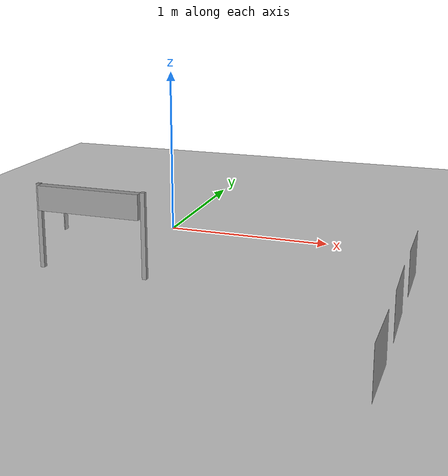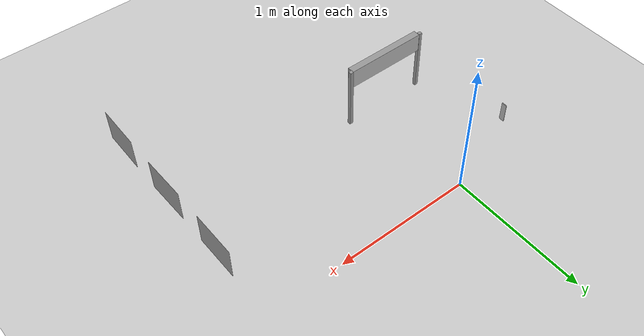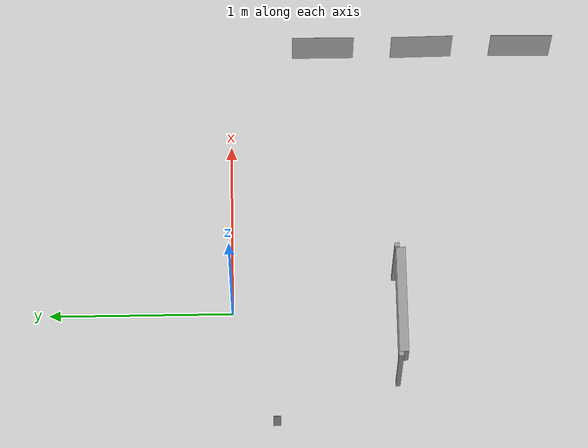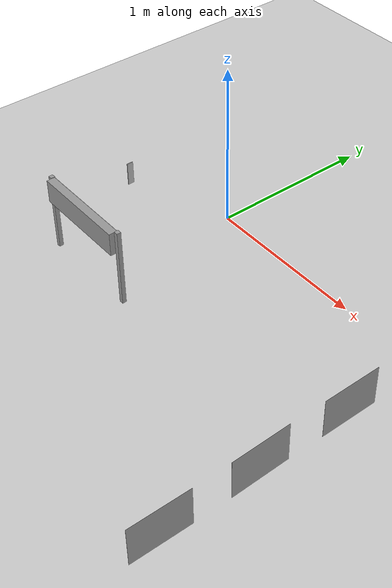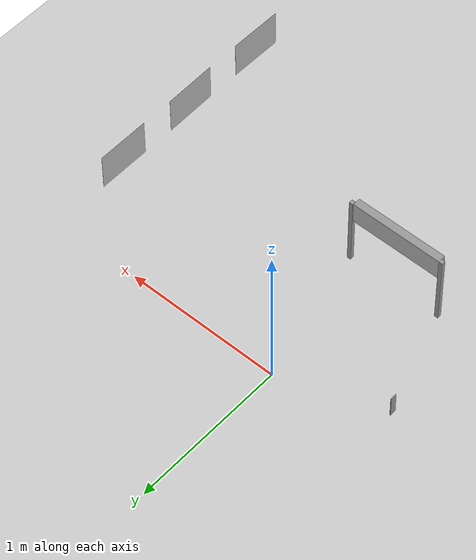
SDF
<sdf version="1.7">
 <world name="default">
  <model name="ground_plane">
   <static>1</static>
   <link name="link">
    <collision name="collision">
     <geometry><plane><normal>0 0 1</normal><size>100 100</size></plane></geometry>
     <surface>
      <contact><collide_bitmask>65535</collide_bitmask></contact>
      <friction><ode><mu>100</mu><mu2>50</mu2></ode></friction>
     </surface>
    </collision>
    <visual name="visual">
     <cast_shadows>0</cast_shadows>
     <geometry><plane><normal>0 0 1</normal><size>4.2 4.2</size></plane></geometry>
     <material><script><uri>file:///home/ros1/桌面/2/png1.material</uri><name>png1</name></script></material>
    </visual>
   </link>
  </model>
  <model name="car1">
   <link name="link_0">
    <inertial>
     <mass>1</mass>
     <inertia>
      <ixx>0.166667</ixx>
      <ixy>0</ixy>
      <ixz>0</ixz>
      <iyy>0.166667</iyy>
      <iyz>0</iyz>
      <izz>0.166667</izz>
     </inertia>
    </inertial>
    <pose>0 -0.000125 -0 0 -0 0</pose>
    <visual name="visual">
     <geometry><box><size>0.345 0.0004 0.25</size></box></geometry>
     <material>
      <lighting>1</lighting>
      <script><uri>file://media/materials/scripts/gazebo.material</uri><name>Gazebo/Grey</name></script>
      <shader type="pixel"><normal_map>__default__</normal_map></shader>
      <ambient>0.3 0.3 0.3 1</ambient>
      <diffuse>0.7 0.7 0.7 1</diffuse>
      <specular>0.01 0.01 0.01 1</specular>
      <emissive>0 0 0 1</emissive>
     </material>
    </visual>
    <collision name="collision">
     <geometry><box><size>0.345 0.0004 0.25</size></box></geometry>
     <surface>
      <friction>
       <ode><mu>1</mu><mu2>1</mu2><fdir1>0 0 0</fdir1><slip1>0</slip1><slip2>0</slip2></ode>
       <torsional>
        <coefficient>1</coefficient>
        <patch_radius>0</patch_radius>
        <surface_radius>0</surface_radius>
        <use_patch_radius>1</use_patch_radius>
        <ode><slip>0</slip></ode>
       </torsional>
      </friction>
      <bounce><restitution_coefficient>0</restitution_coefficient><threshold>1e+06</threshold></bounce>
      <contact>
       <collide_without_contact>0</collide_without_contact>
       <collide_without_contact_bitmask>1</collide_without_contact_bitmask>
       <collide_bitmask>1</collide_bitmask>
       <ode>
        <soft_cfm>0</soft_cfm>
        <soft_erp>0.2</soft_erp>
        <kp>1e+13</kp>
        <kd>1</kd>
        <max_vel>0.01</max_vel>
        <min_depth>0</min_depth>
       </ode>
       <bullet>
        <split_impulse>1</split_impulse>
        <split_impulse_penetration_threshold>-0.01</split_impulse_penetration_threshold>
        <soft_cfm>0</soft_cfm>
        <soft_erp>0.2</soft_erp>
        <kp>1e+13</kp>
        <kd>1</kd>
       </bullet>
      </contact>
     </surface>
    </collision>
   </link>
   <link name="link_1">
    <inertial>
     <mass>1</mass>
     <inertia>
      <ixx>0.166667</ixx>
      <ixy>0</ixy>
      <ixz>0</ixz>
      <iyy>0.166667</iyy>
      <iyz>0</iyz>
      <izz>0.166667</izz>
     </inertia>
    </inertial>
    <pose>0 0.000125 -0 0 -0 0</pose>
    <visual name="visual">
     <geometry><box><size>0.345 0.0001 0.25</size></box></geometry>
     <material>
      <lighting>1</lighting>
      <script><uri>file:///home/ros1/model_editor_models/car1/car1.material</uri><name>car1</name></script>
     </material>
    </visual>
    <collision name="collision">
     <geometry><box><size>0.345 0.0001 0.25</size></box></geometry>
     <surface>
      <friction>
       <ode><mu>1</mu><mu2>1</mu2><fdir1>0 0 0</fdir1><slip1>0</slip1><slip2>0</slip2></ode>
       <torsional>
        <coefficient>1</coefficient>
        <patch_radius>0</patch_radius>
        <surface_radius>0</surface_radius>
        <use_patch_radius>1</use_patch_radius>
        <ode><slip>0</slip></ode>
       </torsional>
      </friction>
      <bounce><restitution_coefficient>0</restitution_coefficient><threshold>1e+06</threshold></bounce>
      <contact>
       <collide_without_contact>0</collide_without_contact>
       <collide_without_contact_bitmask>1</collide_without_contact_bitmask>
       <collide_bitmask>1</collide_bitmask>
       <ode>
        <soft_cfm>0</soft_cfm>
        <soft_erp>0.2</soft_erp>
        <kp>1e+13</kp>
        <kd>1</kd>
        <max_vel>0.01</max_vel>
        <min_depth>0</min_depth>
       </ode>
       <bullet>
        <split_impulse>1</split_impulse>
        <split_impulse_penetration_threshold>-0.01</split_impulse_penetration_threshold>
        <soft_cfm>0</soft_cfm>
        <soft_erp>0.2</soft_erp>
        <kp>1e+13</kp>
        <kd>1</kd>
       </bullet>
      </contact>
     </surface>
    </collision>
   </link>
   <static>0</static>
   <pose>1.56151 -1.63759 0.125 1e-06 -0 1.55632</pose>
  </model>
  <model name="car1_0">
   <link name="link_0">
    <inertial>
     <mass>1</mass>
     <inertia>
      <ixx>0.166667</ixx>
      <ixy>0</ixy>
      <ixz>0</ixz>
      <iyy>0.166667</iyy>
      <iyz>0</iyz>
      <izz>0.166667</izz>
     </inertia>
    </inertial>
    <pose>0 -0.000125 -0 0 -0 0</pose>
    <visual name="visual">
     <geometry><box><size>0.345 0.0004 0.25</size></box></geometry>
     <material>
      <lighting>1</lighting>
      <script><uri>file://media/materials/scripts/gazebo.material</uri><name>Gazebo/Grey</name></script>
      <shader type="pixel"><normal_map>__default__</normal_map></shader>
      <ambient>0.3 0.3 0.3 1</ambient>
      <diffuse>0.7 0.7 0.7 1</diffuse>
      <specular>0.01 0.01 0.01 1</specular>
      <emissive>0 0 0 1</emissive>
     </material>
    </visual>
    <collision name="collision">
     <geometry><box><size>0.345 0.0004 0.25</size></box></geometry>
     <surface>
      <friction>
       <ode><mu>1</mu><mu2>1</mu2><fdir1>0 0 0</fdir1><slip1>0</slip1><slip2>0</slip2></ode>
       <torsional>
        <coefficient>1</coefficient>
        <patch_radius>0</patch_radius>
        <surface_radius>0</surface_radius>
        <use_patch_radius>1</use_patch_radius>
        <ode><slip>0</slip></ode>
       </torsional>
      </friction>
      <bounce><restitution_coefficient>0</restitution_coefficient><threshold>1e+06</threshold></bounce>
      <contact>
       <collide_without_contact>0</collide_without_contact>
       <collide_without_contact_bitmask>1</collide_without_contact_bitmask>
       <collide_bitmask>1</collide_bitmask>
       <ode>
        <soft_cfm>0</soft_cfm>
        <soft_erp>0.2</soft_erp>
        <kp>1e+13</kp>
        <kd>1</kd>
        <max_vel>0.01</max_vel>
        <min_depth>0</min_depth>
       </ode>
       <bullet>
        <split_impulse>1</split_impulse>
        <split_impulse_penetration_threshold>-0.01</split_impulse_penetration_threshold>
        <soft_cfm>0</soft_cfm>
        <soft_erp>0.2</soft_erp>
        <kp>1e+13</kp>
        <kd>1</kd>
       </bullet>
      </contact>
     </surface>
    </collision>
   </link>
   <link name="link_1">
    <inertial>
     <mass>1</mass>
     <inertia>
      <ixx>0.166667</ixx>
      <ixy>0</ixy>
      <ixz>0</ixz>
      <iyy>0.166667</iyy>
      <iyz>0</iyz>
      <izz>0.166667</izz>
     </inertia>
    </inertial>
    <pose>0 0.000125 -0 0 -0 0</pose>
    <visual name="visual">
     <geometry><box><size>0.345 0.0001 0.25</size></box></geometry>
     <material>
      <lighting>1</lighting>
      <script><uri>file:///home/ros1/model_editor_models/car2/car2.material</uri><name>car2</name></script>
     </material>
    </visual>
    <collision name="collision">
     <geometry><box><size>0.345 0.0001 0.25</size></box></geometry>
     <surface>
      <friction>
       <ode><mu>1</mu><mu2>1</mu2><fdir1>0 0 0</fdir1><slip1>0</slip1><slip2>0</slip2></ode>
       <torsional>
        <coefficient>1</coefficient>
        <patch_radius>0</patch_radius>
        <surface_radius>0</surface_radius>
        <use_patch_radius>1</use_patch_radius>
        <ode><slip>0</slip></ode>
       </torsional>
      </friction>
      <bounce><restitution_coefficient>0</restitution_coefficient><threshold>1e+06</threshold></bounce>
      <contact>
       <collide_without_contact>0</collide_without_contact>
       <collide_without_contact_bitmask>1</collide_without_contact_bitmask>
       <collide_bitmask>1</collide_bitmask>
       <ode>
        <soft_cfm>0</soft_cfm>
        <soft_erp>0.2</soft_erp>
        <kp>1e+13</kp>
        <kd>1</kd>
        <max_vel>0.01</max_vel>
        <min_depth>0</min_depth>
       </ode>
       <bullet>
        <split_impulse>1</split_impulse>
        <split_impulse_penetration_threshold>-0.01</split_impulse_penetration_threshold>
        <soft_cfm>0</soft_cfm>
        <soft_erp>0.2</soft_erp>
        <kp>1e+13</kp>
        <kd>1</kd>
       </bullet>
      </contact>
     </surface>
    </collision>
   </link>
   <static>0</static>
   <pose>1.56242 -1.07814 0.125 0 -0 1.5863</pose>
  </model>
  <model name="car1_1">
   <link name="link_0">
    <inertial>
     <mass>1</mass>
     <inertia>
      <ixx>0.166667</ixx>
      <ixy>0</ixy>
      <ixz>0</ixz>
      <iyy>0.166667</iyy>
      <iyz>0</iyz>
      <izz>0.166667</izz>
     </inertia>
    </inertial>
    <pose>0 -0.000125 -0 0 -0 0</pose>
    <visual name="visual">
     <geometry><box><size>0.345 0.0004 0.25</size></box></geometry>
     <material>
      <lighting>1</lighting>
      <script><uri>file://media/materials/scripts/gazebo.material</uri><name>Gazebo/Grey</name></script>
      <shader type="pixel"><normal_map>__default__</normal_map></shader>
      <ambient>0.3 0.3 0.3 1</ambient>
      <diffuse>0.7 0.7 0.7 1</diffuse>
      <specular>0.01 0.01 0.01 1</specular>
      <emissive>0 0 0 1</emissive>
     </material>
    </visual>
    <collision name="collision">
     <geometry><box><size>0.345 0.0004 0.25</size></box></geometry>
     <surface>
      <friction>
       <ode><mu>1</mu><mu2>1</mu2><fdir1>0 0 0</fdir1><slip1>0</slip1><slip2>0</slip2></ode>
       <torsional>
        <coefficient>1</coefficient>
        <patch_radius>0</patch_radius>
        <surface_radius>0</surface_radius>
        <use_patch_radius>1</use_patch_radius>
        <ode><slip>0</slip></ode>
       </torsional>
      </friction>
      <bounce><restitution_coefficient>0</restitution_coefficient><threshold>1e+06</threshold></bounce>
      <contact>
       <collide_without_contact>0</collide_without_contact>
       <collide_without_contact_bitmask>1</collide_without_contact_bitmask>
       <collide_bitmask>1</collide_bitmask>
       <ode>
        <soft_cfm>0</soft_cfm>
        <soft_erp>0.2</soft_erp>
        <kp>1e+13</kp>
        <kd>1</kd>
        <max_vel>0.01</max_vel>
        <min_depth>0</min_depth>
       </ode>
       <bullet>
        <split_impulse>1</split_impulse>
        <split_impulse_penetration_threshold>-0.01</split_impulse_penetration_threshold>
        <soft_cfm>0</soft_cfm>
        <soft_erp>0.2</soft_erp>
        <kp>1e+13</kp>
        <kd>1</kd>
       </bullet>
      </contact>
     </surface>
    </collision>
   </link>
   <link name="link_1">
    <inertial>
     <mass>1</mass>
     <inertia>
      <ixx>0.166667</ixx>
      <ixy>0</ixy>
      <ixz>0</ixz>
      <iyy>0.166667</iyy>
      <iyz>0</iyz>
      <izz>0.166667</izz>
     </inertia>
    </inertial>
    <pose>0 0.000125 -0 0 -0 0</pose>
    <visual name="visual">
     <geometry><box><size>0.345 0.0001 0.25</size></box></geometry>
     <material>
      <lighting>1</lighting>
      <script><uri>file:///home/ros1/model_editor_models/car3/car3.material</uri><name>car3</name></script>
     </material>
    </visual>
    <collision name="collision">
     <geometry><box><size>0.345 0.0001 0.25</size></box></geometry>
     <surface>
      <friction>
       <ode><mu>1</mu><mu2>1</mu2><fdir1>0 0 0</fdir1><slip1>0</slip1><slip2>0</slip2></ode>
       <torsional>
        <coefficient>1</coefficient>
        <patch_radius>0</patch_radius>
        <surface_radius>0</surface_radius>
        <use_patch_radius>1</use_patch_radius>
        <ode><slip>0</slip></ode>
       </torsional>
      </friction>
      <bounce><restitution_coefficient>0</restitution_coefficient><threshold>1e+06</threshold></bounce>
      <contact>
       <collide_without_contact>0</collide_without_contact>
       <collide_without_contact_bitmask>1</collide_without_contact_bitmask>
       <collide_bitmask>1</collide_bitmask>
       <ode>
        <soft_cfm>0</soft_cfm>
        <soft_erp>0.2</soft_erp>
        <kp>1e+13</kp>
        <kd>1</kd>
        <max_vel>0.01</max_vel>
        <min_depth>0</min_depth>
       </ode>
       <bullet>
        <split_impulse>1</split_impulse>
        <split_impulse_penetration_threshold>-0.01</split_impulse_penetration_threshold>
        <soft_cfm>0</soft_cfm>
        <soft_erp>0.2</soft_erp>
        <kp>1e+13</kp>
        <kd>1</kd>
       </bullet>
      </contact>
     </surface>
    </collision>
   </link>
   <static>0</static>
   <pose>1.56249 -0.521605 0.124999 0 4e-06 1.5704</pose>
  </model>
  <model name="man-11">
   <link name="link_0">
    <inertial>
     <mass>1</mass>
     <inertia>
      <ixx>0.166667</ixx>
      <ixy>0</ixy>
      <ixz>0</ixz>
      <iyy>0.166667</iyy>
      <iyz>0</iyz>
      <izz>0.166667</izz>
     </inertia>
    </inertial>
    <pose>0 -0.0015 -0 0 -0 0</pose>
    <visual name="visual">
     <geometry><box><size>0.04 0.005 0.15</size></box></geometry>
     <material>
      <lighting>1</lighting>
      <script><uri>file://media/materials/scripts/gazebo.material</uri><name>Gazebo/Grey</name></script>
      <shader type="pixel"><normal_map>__default__</normal_map></shader>
      <ambient>0.3 0.3 0.3 1</ambient>
      <diffuse>0.7 0.7 0.7 1</diffuse>
      <specular>0.01 0.01 0.01 1</specular>
      <emissive>0 0 0 1</emissive>
     </material>
    </visual>
    <collision name="collision">
     <geometry><box><size>0.04 0.005 0.15</size></box></geometry>
     <surface>
      <friction>
       <ode><mu>1</mu><mu2>1</mu2><fdir1>0 0 0</fdir1><slip1>0</slip1><slip2>0</slip2></ode>
       <torsional>
        <coefficient>1</coefficient>
        <patch_radius>0</patch_radius>
        <surface_radius>0</surface_radius>
        <use_patch_radius>1</use_patch_radius>
        <ode><slip>0</slip></ode>
       </torsional>
      </friction>
      <bounce><restitution_coefficient>0</restitution_coefficient><threshold>1e+06</threshold></bounce>
      <contact>
       <collide_without_contact>0</collide_without_contact>
       <collide_without_contact_bitmask>1</collide_without_contact_bitmask>
       <collide_bitmask>1</collide_bitmask>
       <ode>
        <soft_cfm>0</soft_cfm>
        <soft_erp>0.2</soft_erp>
        <kp>1e+13</kp>
        <kd>1</kd>
        <max_vel>0.01</max_vel>
        <min_depth>0</min_depth>
       </ode>
       <bullet>
        <split_impulse>1</split_impulse>
        <split_impulse_penetration_threshold>-0.01</split_impulse_penetration_threshold>
        <soft_cfm>0</soft_cfm>
        <soft_erp>0.2</soft_erp>
        <kp>1e+13</kp>
        <kd>1</kd>
       </bullet>
      </contact>
     </surface>
    </collision>
   </link>
   <link name="link_4">
    <inertial>
     <mass>1</mass>
     <inertia>
      <ixx>0.166667</ixx>
      <ixy>0</ixy>
      <ixz>0</ixz>
      <iyy>0.166667</iyy>
      <iyz>0</iyz>
      <izz>0.166667</izz>
     </inertia>
    </inertial>
    <pose>0 0.0015 -0 0 -0 0</pose>
    <visual name="visual">
     <geometry><box><size>0.04 0.001 0.15</size></box></geometry>
     <material>
      <script><uri>file:///home/ros1/model_editor_models/man-11/man_11.material</uri><name>man_11</name></script>
     </material>
    </visual>
    <collision name="collision">
     <geometry><box><size>0.04 0.001 0.15</size></box></geometry>
     <surface>
      <friction>
       <ode><mu>1</mu><mu2>1</mu2><fdir1>0 0 0</fdir1><slip1>0</slip1><slip2>0</slip2></ode>
       <torsional>
        <coefficient>1</coefficient>
        <patch_radius>0</patch_radius>
        <surface_radius>0</surface_radius>
        <use_patch_radius>1</use_patch_radius>
        <ode><slip>0</slip></ode>
       </torsional>
      </friction>
      <bounce><restitution_coefficient>0</restitution_coefficient><threshold>1e+06</threshold></bounce>
      <contact>
       <collide_without_contact>0</collide_without_contact>
       <collide_without_contact_bitmask>1</collide_without_contact_bitmask>
       <collide_bitmask>1</collide_bitmask>
       <ode>
        <soft_cfm>0</soft_cfm>
        <soft_erp>0.2</soft_erp>
        <kp>1e+13</kp>
        <kd>1</kd>
        <max_vel>0.01</max_vel>
        <min_depth>0</min_depth>
       </ode>
       <bullet>
        <split_impulse>1</split_impulse>
        <split_impulse_penetration_threshold>-0.01</split_impulse_penetration_threshold>
        <soft_cfm>0</soft_cfm>
        <soft_erp>0.2</soft_erp>
        <kp>1e+13</kp>
        <kd>1</kd>
       </bullet>
      </contact>
     </surface>
    </collision>
   </link>
   <static>0</static>
   <pose>-0.638543 -0.236859 0.075001 -2e-06 4.8e-05 -1.575</pose>
  </model>
  <model name="leg_1">
   <link name="link_0">
    <inertial>
     <mass>1</mass>
     <inertia>
      <ixx>0.166667</ixx>
      <ixy>0</ixy>
      <ixz>0</ixz>
      <iyy>0.166667</iyy>
      <iyz>0</iyz>
      <izz>0.166667</izz>
     </inertia>
    </inertial>
    <visual name="visual">
     <geometry><box><size>0.025 0.025 0.48</size></box></geometry>
     <material>
      <lighting>1</lighting>
      <script><uri>file://media/materials/scripts/gazebo.material</uri><name>Gazebo/Grey</name></script>
      <shader type="pixel"><normal_map>__default__</normal_map></shader>
      <ambient>0.3 0.3 0.3 1</ambient>
      <diffuse>0.7 0.7 0.7 1</diffuse>
      <specular>0.01 0.01 0.01 1</specular>
      <emissive>0 0 0 1</emissive>
     </material>
    </visual>
    <collision name="collision">
     <geometry><box><size>0.025 0.025 0.48</size></box></geometry>
     <surface>
      <friction>
       <ode><mu>1</mu><mu2>1</mu2><fdir1>0 0 0</fdir1><slip1>0</slip1><slip2>0</slip2></ode>
       <torsional>
        <coefficient>1</coefficient>
        <patch_radius>0</patch_radius>
        <surface_radius>0</surface_radius>
        <use_patch_radius>1</use_patch_radius>
        <ode><slip>0</slip></ode>
       </torsional>
      </friction>
      <bounce><restitution_coefficient>0</restitution_coefficient><threshold>1e+06</threshold></bounce>
      <contact>
       <collide_without_contact>0</collide_without_contact>
       <collide_without_contact_bitmask>1</collide_without_contact_bitmask>
       <collide_bitmask>1</collide_bitmask>
       <ode>
        <soft_cfm>0</soft_cfm>
        <soft_erp>0.2</soft_erp>
        <kp>1e+13</kp>
        <kd>1</kd>
        <max_vel>0.01</max_vel>
        <min_depth>0</min_depth>
       </ode>
       <bullet>
        <split_impulse>1</split_impulse>
        <split_impulse_penetration_threshold>-0.01</split_impulse_penetration_threshold>
        <soft_cfm>0</soft_cfm>
        <soft_erp>0.2</soft_erp>
        <kp>1e+13</kp>
        <kd>1</kd>
       </bullet>
      </contact>
     </surface>
    </collision>
   </link>
   <static>0</static>
   <pose>-0.415354 -0.888387 0.24 4e-06 2.1e-05 2.6e-05</pose>
  </model>
  <model name="leg_2">
   <link name="link_0">
    <inertial>
     <mass>1</mass>
     <inertia>
      <ixx>0.166667</ixx>
      <ixy>0</ixy>
      <ixz>0</ixz>
      <iyy>0.166667</iyy>
      <iyz>0</iyz>
      <izz>0.166667</izz>
     </inertia>
    </inertial>
    <visual name="visual">
     <geometry><box><size>0.025 0.025 0.48</size></box></geometry>
     <material>
      <lighting>1</lighting>
      <script><uri>file://media/materials/scripts/gazebo.material</uri><name>Gazebo/Grey</name></script>
      <shader type="pixel"><normal_map>__default__</normal_map></shader>
      <ambient>0.3 0.3 0.3 1</ambient>
      <diffuse>0.7 0.7 0.7 1</diffuse>
      <specular>0.01 0.01 0.01 1</specular>
      <emissive>0 0 0 1</emissive>
     </material>
    </visual>
    <collision name="collision">
     <geometry><box><size>0.025 0.025 0.48</size></box></geometry>
     <surface>
      <friction>
       <ode><mu>1</mu><mu2>1</mu2><fdir1>0 0 0</fdir1><slip1>0</slip1><slip2>0</slip2></ode>
       <torsional>
        <coefficient>1</coefficient>
        <patch_radius>0</patch_radius>
        <surface_radius>0</surface_radius>
        <use_patch_radius>1</use_patch_radius>
        <ode><slip>0</slip></ode>
       </torsional>
      </friction>
      <bounce><restitution_coefficient>0</restitution_coefficient><threshold>1e+06</threshold></bounce>
      <contact>
       <collide_without_contact>0</collide_without_contact>
       <collide_without_contact_bitmask>1</collide_without_contact_bitmask>
       <collide_bitmask>1</collide_bitmask>
       <ode>
        <soft_cfm>0</soft_cfm>
        <soft_erp>0.2</soft_erp>
        <kp>1e+13</kp>
        <kd>1</kd>
        <max_vel>0.01</max_vel>
        <min_depth>0</min_depth>
       </ode>
       <bullet>
        <split_impulse>1</split_impulse>
        <split_impulse_penetration_threshold>-0.01</split_impulse_penetration_threshold>
        <soft_cfm>0</soft_cfm>
        <soft_erp>0.2</soft_erp>
        <kp>1e+13</kp>
        <kd>1</kd>
       </bullet>
      </contact>
     </surface>
    </collision>
   </link>
   <static>0</static>
   <pose>0.199663 -0.884421 0.23999 1e-06 -0 0.000117</pose>
  </model>
  <model name="ryg3_0">
   <link name="link_0">
    <inertial>
     <mass>1</mass>
     <inertia>
      <ixx>0.166667</ixx>
      <ixy>0</ixy>
      <ixz>0</ixz>
      <iyy>0.166667</iyy>
      <iyz>0</iyz>
      <izz>0.166667</izz>
     </inertia>
    </inertial>
    <pose>0 0 0.0725 0 -0 0</pose>
    <visual name="visual">
     <geometry><box><size>0.59 0.05 0.14</size></box></geometry>
     <material>
      <lighting>1</lighting>
      <script><uri>file://media/materials/scripts/gazebo.material</uri><name>Gazebo/Grey</name></script>
      <shader type="pixel"><normal_map>__default__</normal_map></shader>
      <ambient>0.3 0.3 0.3 1</ambient>
      <diffuse>0.7 0.7 0.7 1</diffuse>
      <specular>0.01 0.01 0.01 1</specular>
      <emissive>0 0 0 1</emissive>
     </material>
    </visual>
    <collision name="collision">
     <geometry><box><size>0.59 0.05 0.14</size></box></geometry>
     <surface>
      <friction>
       <ode><mu>1</mu><mu2>1</mu2><fdir1>0 0 0</fdir1><slip1>0</slip1><slip2>0</slip2></ode>
       <torsional>
        <coefficient>1</coefficient>
        <patch_radius>0</patch_radius>
        <surface_radius>0</surface_radius>
        <use_patch_radius>1</use_patch_radius>
        <ode><slip>0</slip></ode>
       </torsional>
      </friction>
      <bounce><restitution_coefficient>0</restitution_coefficient><threshold>1e+06</threshold></bounce>
      <contact>
       <collide_without_contact>0</collide_without_contact>
       <collide_without_contact_bitmask>1</collide_without_contact_bitmask>
       <collide_bitmask>1</collide_bitmask>
       <ode>
        <soft_cfm>0</soft_cfm>
        <soft_erp>0.2</soft_erp>
        <kp>1e+13</kp>
        <kd>1</kd>
        <max_vel>0.01</max_vel>
        <min_depth>0</min_depth>
       </ode>
       <bullet>
        <split_impulse>1</split_impulse>
        <split_impulse_penetration_threshold>-0.01</split_impulse_penetration_threshold>
        <soft_cfm>0</soft_cfm>
        <soft_erp>0.2</soft_erp>
        <kp>1e+13</kp>
        <kd>1</kd>
       </bullet>
      </contact>
     </surface>
    </collision>
   </link>
   <link name="link_1">
    <inertial>
     <mass>1</mass>
     <inertia>
      <ixx>0.166667</ixx>
      <ixy>0</ixy>
      <ixz>0</ixz>
      <iyy>0.166667</iyy>
      <iyz>0</iyz>
      <izz>0.166667</izz>
     </inertia>
    </inertial>
    <pose>0 0.0255 0.0725 0 -0 0</pose>
    <visual name="visual">
     <geometry><box><size>0.59 0.001 0.14</size></box></geometry>
     <material>
      <lighting>1</lighting>
      <script><uri>file:///home/ros1/model_editor_models/ryg3/ryg3.material</uri><name>ryg</name></script>
     </material>
    </visual>
    <collision name="collision">
     <geometry><box><size>0.59 0.001 0.14</size></box></geometry>
     <surface>
      <friction>
       <ode><mu>1</mu><mu2>1</mu2><fdir1>0 0 0</fdir1><slip1>0</slip1><slip2>0</slip2></ode>
       <torsional>
        <coefficient>1</coefficient>
        <patch_radius>0</patch_radius>
        <surface_radius>0</surface_radius>
        <use_patch_radius>1</use_patch_radius>
        <ode><slip>0</slip></ode>
       </torsional>
      </friction>
      <bounce><restitution_coefficient>0</restitution_coefficient><threshold>1e+06</threshold></bounce>
      <contact>
       <collide_without_contact>0</collide_without_contact>
       <collide_without_contact_bitmask>1</collide_without_contact_bitmask>
       <collide_bitmask>1</collide_bitmask>
       <ode>
        <soft_cfm>0</soft_cfm>
        <soft_erp>0.2</soft_erp>
        <kp>1e+13</kp>
        <kd>1</kd>
        <max_vel>0.01</max_vel>
        <min_depth>0</min_depth>
       </ode>
       <bullet>
        <split_impulse>1</split_impulse>
        <split_impulse_penetration_threshold>-0.01</split_impulse_penetration_threshold>
        <soft_cfm>0</soft_cfm>
        <soft_erp>0.2</soft_erp>
        <kp>1e+13</kp>
        <kd>1</kd>
       </bullet>
      </contact>
     </surface>
    </collision>
   </link>
   <static>1</static>
   <pose>-0.107847 -0.903466 0.334289 0 -0 0</pose>
  </model>
 </world>
</sdf>
